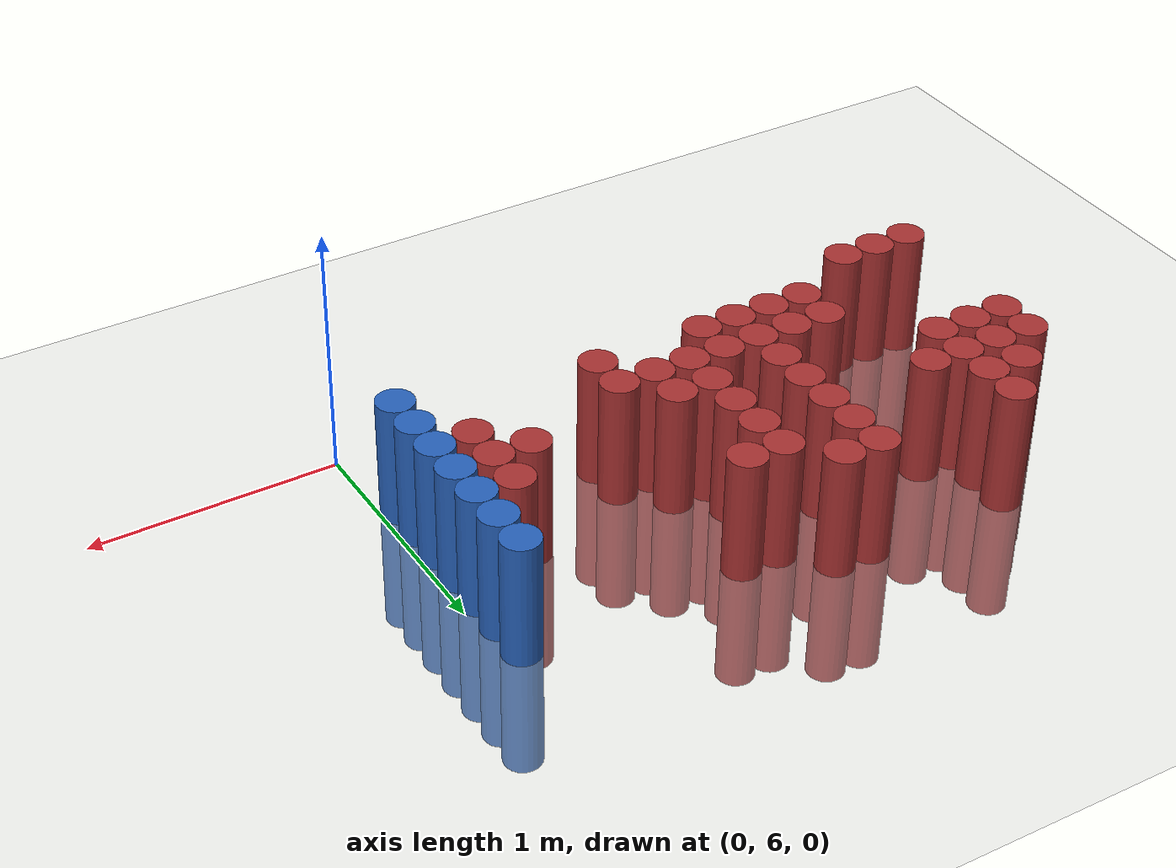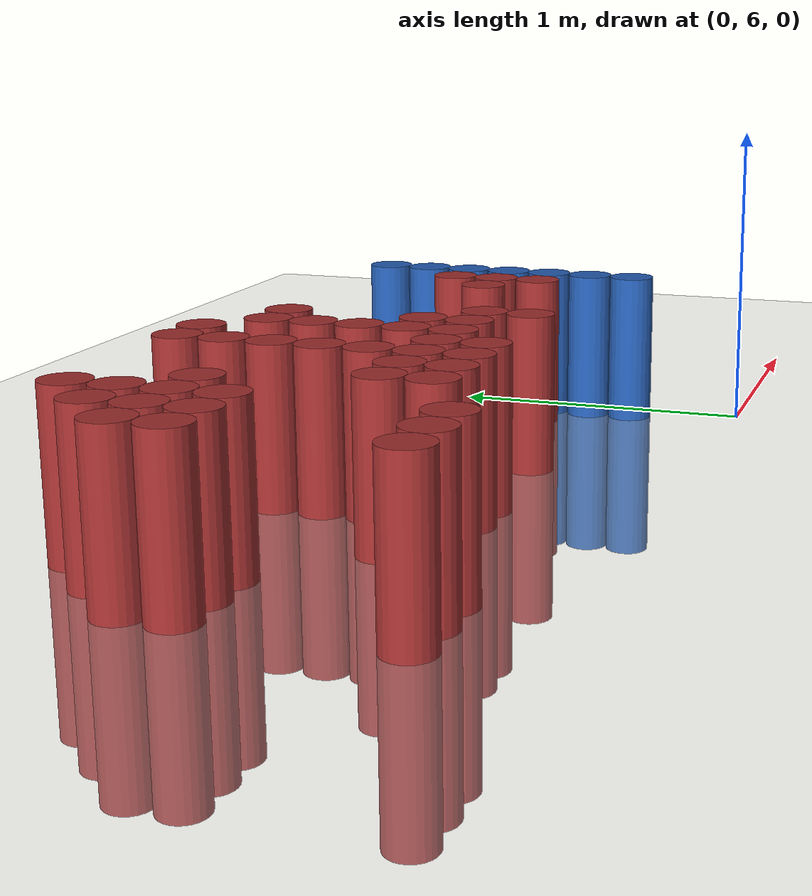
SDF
<sdf version="1.6">
 <world name="default">
  <model name="ground_plane">
   <static>1</static>
   <link name="link">
    <collision name="collision">
     <geometry><plane><normal>0 0 1</normal><size>100 100</size></plane></geometry>
     <surface><friction><ode><mu>100</mu><mu2>50</mu2></ode></friction></surface>
    </collision>
    <visual name="visual">
     <cast_shadows>0</cast_shadows>
     <geometry><plane><normal>0 0 1</normal><size>100 100</size></plane></geometry>
     <material>
      <script><uri>file://media/materials/scripts/gazebo.material</uri><name>Gazebo/Grey</name></script>
     </material>
    </visual>
   </link>
  </model>
  <model name="unit_cylinder_169">
   <static>1</static>
   <pose>-2.325000 6.375000 0.000000 0.000000 0.000000 0.000000</pose>
   <link name="link">
    <inertial>
     <mass>1</mass>
     <inertia><ixx>0.145833</ixx><ixy>0</ixy><ixz>0</ixz><iyy>0.145833</iyy><iyz>0</iyz><izz>0.125</izz></inertia>
    </inertial>
    <collision name="collision">
     <geometry><cylinder><radius>0.075000</radius><length>1</length></cylinder></geometry>
    </collision>
    <visual name="visual">
     <geometry><cylinder><radius>0.075000</radius><length>1</length></cylinder></geometry>
     <material>
      <ambient>0.648000 0.192000 0.192000 1</ambient>
      <diffuse>0.648000 0.192000 0.192000 1</diffuse>
     </material>
     <material>
      <script><name>Gazebo/Grey</name><uri>file://media/materials/scripts/gazebo.material</uri></script>
     </material>
    </visual>
   </link>
  </model>
  <model name="unit_cylinder_170">
   <static>1</static>
   <pose>-2.325000 6.975000 0.000000 0.000000 0.000000 0.000000</pose>
   <link name="link">
    <inertial>
     <mass>1</mass>
     <inertia><ixx>0.145833</ixx><ixy>0</ixy><ixz>0</ixz><iyy>0.145833</iyy><iyz>0</iyz><izz>0.125</izz></inertia>
    </inertial>
    <collision name="collision">
     <geometry><cylinder><radius>0.075000</radius><length>1</length></cylinder></geometry>
    </collision>
    <visual name="visual">
     <geometry><cylinder><radius>0.075000</radius><length>1</length></cylinder></geometry>
     <material>
      <ambient>0.648000 0.192000 0.192000 1</ambient>
      <diffuse>0.648000 0.192000 0.192000 1</diffuse>
     </material>
     <material>
      <script><name>Gazebo/Grey</name><uri>file://media/materials/scripts/gazebo.material</uri></script>
     </material>
    </visual>
   </link>
  </model>
  <model name="unit_cylinder_171">
   <static>1</static>
   <pose>-2.325000 7.125000 0.000000 0.000000 0.000000 0.000000</pose>
   <link name="link">
    <inertial>
     <mass>1</mass>
     <inertia><ixx>0.145833</ixx><ixy>0</ixy><ixz>0</ixz><iyy>0.145833</iyy><iyz>0</iyz><izz>0.125</izz></inertia>
    </inertial>
    <collision name="collision">
     <geometry><cylinder><radius>0.075000</radius><length>1</length></cylinder></geometry>
    </collision>
    <visual name="visual">
     <geometry><cylinder><radius>0.075000</radius><length>1</length></cylinder></geometry>
     <material>
      <ambient>0.648000 0.192000 0.192000 1</ambient>
      <diffuse>0.648000 0.192000 0.192000 1</diffuse>
     </material>
     <material>
      <script><name>Gazebo/Grey</name><uri>file://media/materials/scripts/gazebo.material</uri></script>
     </material>
    </visual>
   </link>
  </model>
  <model name="unit_cylinder_174">
   <static>1</static>
   <pose>-2.175000 6.375000 0.000000 0.000000 0.000000 0.000000</pose>
   <link name="link">
    <inertial>
     <mass>1</mass>
     <inertia><ixx>0.145833</ixx><ixy>0</ixy><ixz>0</ixz><iyy>0.145833</iyy><iyz>0</iyz><izz>0.125</izz></inertia>
    </inertial>
    <collision name="collision">
     <geometry><cylinder><radius>0.075000</radius><length>1</length></cylinder></geometry>
    </collision>
    <visual name="visual">
     <geometry><cylinder><radius>0.075000</radius><length>1</length></cylinder></geometry>
     <material>
      <ambient>0.648000 0.192000 0.192000 1</ambient>
      <diffuse>0.648000 0.192000 0.192000 1</diffuse>
     </material>
     <material>
      <script><name>Gazebo/Grey</name><uri>file://media/materials/scripts/gazebo.material</uri></script>
     </material>
    </visual>
   </link>
  </model>
  <model name="unit_cylinder_175">
   <static>1</static>
   <pose>-2.175000 6.975000 0.000000 0.000000 0.000000 0.000000</pose>
   <link name="link">
    <inertial>
     <mass>1</mass>
     <inertia><ixx>0.145833</ixx><ixy>0</ixy><ixz>0</ixz><iyy>0.145833</iyy><iyz>0</iyz><izz>0.125</izz></inertia>
    </inertial>
    <collision name="collision">
     <geometry><cylinder><radius>0.075000</radius><length>1</length></cylinder></geometry>
    </collision>
    <visual name="visual">
     <geometry><cylinder><radius>0.075000</radius><length>1</length></cylinder></geometry>
     <material>
      <ambient>0.648000 0.192000 0.192000 1</ambient>
      <diffuse>0.648000 0.192000 0.192000 1</diffuse>
     </material>
     <material>
      <script><name>Gazebo/Grey</name><uri>file://media/materials/scripts/gazebo.material</uri></script>
     </material>
    </visual>
   </link>
  </model>
  <model name="unit_cylinder_176">
   <static>1</static>
   <pose>-2.175000 7.125000 0.000000 0.000000 0.000000 0.000000</pose>
   <link name="link">
    <inertial>
     <mass>1</mass>
     <inertia><ixx>0.145833</ixx><ixy>0</ixy><ixz>0</ixz><iyy>0.145833</iyy><iyz>0</iyz><izz>0.125</izz></inertia>
    </inertial>
    <collision name="collision">
     <geometry><cylinder><radius>0.075000</radius><length>1</length></cylinder></geometry>
    </collision>
    <visual name="visual">
     <geometry><cylinder><radius>0.075000</radius><length>1</length></cylinder></geometry>
     <material>
      <ambient>0.648000 0.192000 0.192000 1</ambient>
      <diffuse>0.648000 0.192000 0.192000 1</diffuse>
     </material>
     <material>
      <script><name>Gazebo/Grey</name><uri>file://media/materials/scripts/gazebo.material</uri></script>
     </material>
    </visual>
   </link>
  </model>
  <model name="unit_cylinder_177">
   <static>1</static>
   <pose>-2.175000 7.275000 0.000000 0.000000 0.000000 0.000000</pose>
   <link name="link">
    <inertial>
     <mass>1</mass>
     <inertia><ixx>0.145833</ixx><ixy>0</ixy><ixz>0</ixz><iyy>0.145833</iyy><iyz>0</iyz><izz>0.125</izz></inertia>
    </inertial>
    <collision name="collision">
     <geometry><cylinder><radius>0.075000</radius><length>1</length></cylinder></geometry>
    </collision>
    <visual name="visual">
     <geometry><cylinder><radius>0.075000</radius><length>1</length></cylinder></geometry>
     <material>
      <ambient>0.648000 0.192000 0.192000 1</ambient>
      <diffuse>0.648000 0.192000 0.192000 1</diffuse>
     </material>
     <material>
      <script><name>Gazebo/Grey</name><uri>file://media/materials/scripts/gazebo.material</uri></script>
     </material>
    </visual>
   </link>
  </model>
  <model name="unit_cylinder_178">
   <static>1</static>
   <pose>-2.025000 6.375000 0.000000 0.000000 0.000000 0.000000</pose>
   <link name="link">
    <inertial>
     <mass>1</mass>
     <inertia><ixx>0.145833</ixx><ixy>0</ixy><ixz>0</ixz><iyy>0.145833</iyy><iyz>0</iyz><izz>0.125</izz></inertia>
    </inertial>
    <collision name="collision">
     <geometry><cylinder><radius>0.075000</radius><length>1</length></cylinder></geometry>
    </collision>
    <visual name="visual">
     <geometry><cylinder><radius>0.075000</radius><length>1</length></cylinder></geometry>
     <material>
      <ambient>0.648000 0.192000 0.192000 1</ambient>
      <diffuse>0.648000 0.192000 0.192000 1</diffuse>
     </material>
     <material>
      <script><name>Gazebo/Grey</name><uri>file://media/materials/scripts/gazebo.material</uri></script>
     </material>
    </visual>
   </link>
  </model>
  <model name="unit_cylinder_179">
   <static>1</static>
   <pose>-2.025000 6.975000 0.000000 0.000000 0.000000 0.000000</pose>
   <link name="link">
    <inertial>
     <mass>1</mass>
     <inertia><ixx>0.145833</ixx><ixy>0</ixy><ixz>0</ixz><iyy>0.145833</iyy><iyz>0</iyz><izz>0.125</izz></inertia>
    </inertial>
    <collision name="collision">
     <geometry><cylinder><radius>0.075000</radius><length>1</length></cylinder></geometry>
    </collision>
    <visual name="visual">
     <geometry><cylinder><radius>0.075000</radius><length>1</length></cylinder></geometry>
     <material>
      <ambient>0.648000 0.192000 0.192000 1</ambient>
      <diffuse>0.648000 0.192000 0.192000 1</diffuse>
     </material>
     <material>
      <script><name>Gazebo/Grey</name><uri>file://media/materials/scripts/gazebo.material</uri></script>
     </material>
    </visual>
   </link>
  </model>
  <model name="unit_cylinder_180">
   <static>1</static>
   <pose>-2.025000 7.125000 0.000000 0.000000 0.000000 0.000000</pose>
   <link name="link">
    <inertial>
     <mass>1</mass>
     <inertia><ixx>0.145833</ixx><ixy>0</ixy><ixz>0</ixz><iyy>0.145833</iyy><iyz>0</iyz><izz>0.125</izz></inertia>
    </inertial>
    <collision name="collision">
     <geometry><cylinder><radius>0.075000</radius><length>1</length></cylinder></geometry>
    </collision>
    <visual name="visual">
     <geometry><cylinder><radius>0.075000</radius><length>1</length></cylinder></geometry>
     <material>
      <ambient>0.648000 0.192000 0.192000 1</ambient>
      <diffuse>0.648000 0.192000 0.192000 1</diffuse>
     </material>
     <material>
      <script><name>Gazebo/Grey</name><uri>file://media/materials/scripts/gazebo.material</uri></script>
     </material>
    </visual>
   </link>
  </model>
  <model name="unit_cylinder_181">
   <static>1</static>
   <pose>-2.025000 7.275000 0.000000 0.000000 0.000000 0.000000</pose>
   <link name="link">
    <inertial>
     <mass>1</mass>
     <inertia><ixx>0.145833</ixx><ixy>0</ixy><ixz>0</ixz><iyy>0.145833</iyy><iyz>0</iyz><izz>0.125</izz></inertia>
    </inertial>
    <collision name="collision">
     <geometry><cylinder><radius>0.075000</radius><length>1</length></cylinder></geometry>
    </collision>
    <visual name="visual">
     <geometry><cylinder><radius>0.075000</radius><length>1</length></cylinder></geometry>
     <material>
      <ambient>0.648000 0.192000 0.192000 1</ambient>
      <diffuse>0.648000 0.192000 0.192000 1</diffuse>
     </material>
     <material>
      <script><name>Gazebo/Grey</name><uri>file://media/materials/scripts/gazebo.material</uri></script>
     </material>
    </visual>
   </link>
  </model>
  <model name="unit_cylinder_182">
   <static>1</static>
   <pose>-2.025000 7.425000 0.000000 0.000000 0.000000 0.000000</pose>
   <link name="link">
    <inertial>
     <mass>1</mass>
     <inertia><ixx>0.145833</ixx><ixy>0</ixy><ixz>0</ixz><iyy>0.145833</iyy><iyz>0</iyz><izz>0.125</izz></inertia>
    </inertial>
    <collision name="collision">
     <geometry><cylinder><radius>0.075000</radius><length>1</length></cylinder></geometry>
    </collision>
    <visual name="visual">
     <geometry><cylinder><radius>0.075000</radius><length>1</length></cylinder></geometry>
     <material>
      <ambient>0.648000 0.192000 0.192000 1</ambient>
      <diffuse>0.648000 0.192000 0.192000 1</diffuse>
     </material>
     <material>
      <script><name>Gazebo/Grey</name><uri>file://media/materials/scripts/gazebo.material</uri></script>
     </material>
    </visual>
   </link>
  </model>
  <model name="unit_cylinder_184">
   <static>1</static>
   <pose>-1.875000 7.125000 0.000000 0.000000 0.000000 0.000000</pose>
   <link name="link">
    <inertial>
     <mass>1</mass>
     <inertia><ixx>0.145833</ixx><ixy>0</ixy><ixz>0</ixz><iyy>0.145833</iyy><iyz>0</iyz><izz>0.125</izz></inertia>
    </inertial>
    <collision name="collision">
     <geometry><cylinder><radius>0.075000</radius><length>1</length></cylinder></geometry>
    </collision>
    <visual name="visual">
     <geometry><cylinder><radius>0.075000</radius><length>1</length></cylinder></geometry>
     <material>
      <ambient>0.648000 0.192000 0.192000 1</ambient>
      <diffuse>0.648000 0.192000 0.192000 1</diffuse>
     </material>
     <material>
      <script><name>Gazebo/Grey</name><uri>file://media/materials/scripts/gazebo.material</uri></script>
     </material>
    </visual>
   </link>
  </model>
  <model name="unit_cylinder_188">
   <static>1</static>
   <pose>-1.725000 6.525000 0.000000 0.000000 0.000000 0.000000</pose>
   <link name="link">
    <inertial>
     <mass>1</mass>
     <inertia><ixx>0.145833</ixx><ixy>0</ixy><ixz>0</ixz><iyy>0.145833</iyy><iyz>0</iyz><izz>0.125</izz></inertia>
    </inertial>
    <collision name="collision">
     <geometry><cylinder><radius>0.075000</radius><length>1</length></cylinder></geometry>
    </collision>
    <visual name="visual">
     <geometry><cylinder><radius>0.075000</radius><length>1</length></cylinder></geometry>
     <material>
      <ambient>0.648000 0.192000 0.192000 1</ambient>
      <diffuse>0.648000 0.192000 0.192000 1</diffuse>
     </material>
     <material>
      <script><name>Gazebo/Grey</name><uri>file://media/materials/scripts/gazebo.material</uri></script>
     </material>
    </visual>
   </link>
  </model>
  <model name="unit_cylinder_189">
   <static>1</static>
   <pose>-1.725000 6.675000 0.000000 0.000000 0.000000 0.000000</pose>
   <link name="link">
    <inertial>
     <mass>1</mass>
     <inertia><ixx>0.145833</ixx><ixy>0</ixy><ixz>0</ixz><iyy>0.145833</iyy><iyz>0</iyz><izz>0.125</izz></inertia>
    </inertial>
    <collision name="collision">
     <geometry><cylinder><radius>0.075000</radius><length>1</length></cylinder></geometry>
    </collision>
    <visual name="visual">
     <geometry><cylinder><radius>0.075000</radius><length>1</length></cylinder></geometry>
     <material>
      <ambient>0.648000 0.192000 0.192000 1</ambient>
      <diffuse>0.648000 0.192000 0.192000 1</diffuse>
     </material>
     <material>
      <script><name>Gazebo/Grey</name><uri>file://media/materials/scripts/gazebo.material</uri></script>
     </material>
    </visual>
   </link>
  </model>
  <model name="unit_cylinder_193">
   <static>1</static>
   <pose>-1.575000 6.525000 0.000000 0.000000 0.000000 0.000000</pose>
   <link name="link">
    <inertial>
     <mass>1</mass>
     <inertia><ixx>0.145833</ixx><ixy>0</ixy><ixz>0</ixz><iyy>0.145833</iyy><iyz>0</iyz><izz>0.125</izz></inertia>
    </inertial>
    <collision name="collision">
     <geometry><cylinder><radius>0.075000</radius><length>1</length></cylinder></geometry>
    </collision>
    <visual name="visual">
     <geometry><cylinder><radius>0.075000</radius><length>1</length></cylinder></geometry>
     <material>
      <ambient>0.648000 0.192000 0.192000 1</ambient>
      <diffuse>0.648000 0.192000 0.192000 1</diffuse>
     </material>
     <material>
      <script><name>Gazebo/Grey</name><uri>file://media/materials/scripts/gazebo.material</uri></script>
     </material>
    </visual>
   </link>
  </model>
  <model name="unit_cylinder_194">
   <static>1</static>
   <pose>-1.575000 6.675000 0.000000 0.000000 0.000000 0.000000</pose>
   <link name="link">
    <inertial>
     <mass>1</mass>
     <inertia><ixx>0.145833</ixx><ixy>0</ixy><ixz>0</ixz><iyy>0.145833</iyy><iyz>0</iyz><izz>0.125</izz></inertia>
    </inertial>
    <collision name="collision">
     <geometry><cylinder><radius>0.075000</radius><length>1</length></cylinder></geometry>
    </collision>
    <visual name="visual">
     <geometry><cylinder><radius>0.075000</radius><length>1</length></cylinder></geometry>
     <material>
      <ambient>0.648000 0.192000 0.192000 1</ambient>
      <diffuse>0.648000 0.192000 0.192000 1</diffuse>
     </material>
     <material>
      <script><name>Gazebo/Grey</name><uri>file://media/materials/scripts/gazebo.material</uri></script>
     </material>
    </visual>
   </link>
  </model>
  <model name="unit_cylinder_200">
   <static>1</static>
   <pose>-1.425000 6.525000 0.000000 0.000000 0.000000 0.000000</pose>
   <link name="link">
    <inertial>
     <mass>1</mass>
     <inertia><ixx>0.145833</ixx><ixy>0</ixy><ixz>0</ixz><iyy>0.145833</iyy><iyz>0</iyz><izz>0.125</izz></inertia>
    </inertial>
    <collision name="collision">
     <geometry><cylinder><radius>0.075000</radius><length>1</length></cylinder></geometry>
    </collision>
    <visual name="visual">
     <geometry><cylinder><radius>0.075000</radius><length>1</length></cylinder></geometry>
     <material>
      <ambient>0.648000 0.192000 0.192000 1</ambient>
      <diffuse>0.648000 0.192000 0.192000 1</diffuse>
     </material>
     <material>
      <script><name>Gazebo/Grey</name><uri>file://media/materials/scripts/gazebo.material</uri></script>
     </material>
    </visual>
   </link>
  </model>
  <model name="unit_cylinder_201">
   <static>1</static>
   <pose>-1.425000 6.675000 0.000000 0.000000 0.000000 0.000000</pose>
   <link name="link">
    <inertial>
     <mass>1</mass>
     <inertia><ixx>0.145833</ixx><ixy>0</ixy><ixz>0</ixz><iyy>0.145833</iyy><iyz>0</iyz><izz>0.125</izz></inertia>
    </inertial>
    <collision name="collision">
     <geometry><cylinder><radius>0.075000</radius><length>1</length></cylinder></geometry>
    </collision>
    <visual name="visual">
     <geometry><cylinder><radius>0.075000</radius><length>1</length></cylinder></geometry>
     <material>
      <ambient>0.648000 0.192000 0.192000 1</ambient>
      <diffuse>0.648000 0.192000 0.192000 1</diffuse>
     </material>
     <material>
      <script><name>Gazebo/Grey</name><uri>file://media/materials/scripts/gazebo.material</uri></script>
     </material>
    </visual>
   </link>
  </model>
  <model name="unit_cylinder_202">
   <static>1</static>
   <pose>-1.425000 6.825000 0.000000 0.000000 0.000000 0.000000</pose>
   <link name="link">
    <inertial>
     <mass>1</mass>
     <inertia><ixx>0.145833</ixx><ixy>0</ixy><ixz>0</ixz><iyy>0.145833</iyy><iyz>0</iyz><izz>0.125</izz></inertia>
    </inertial>
    <collision name="collision">
     <geometry><cylinder><radius>0.075000</radius><length>1</length></cylinder></geometry>
    </collision>
    <visual name="visual">
     <geometry><cylinder><radius>0.075000</radius><length>1</length></cylinder></geometry>
     <material>
      <ambient>0.648000 0.192000 0.192000 1</ambient>
      <diffuse>0.648000 0.192000 0.192000 1</diffuse>
     </material>
     <material>
      <script><name>Gazebo/Grey</name><uri>file://media/materials/scripts/gazebo.material</uri></script>
     </material>
    </visual>
   </link>
  </model>
  <model name="unit_cylinder_203">
   <static>1</static>
   <pose>-1.425000 6.975000 0.000000 0.000000 0.000000 0.000000</pose>
   <link name="link">
    <inertial>
     <mass>1</mass>
     <inertia><ixx>0.145833</ixx><ixy>0</ixy><ixz>0</ixz><iyy>0.145833</iyy><iyz>0</iyz><izz>0.125</izz></inertia>
    </inertial>
    <collision name="collision">
     <geometry><cylinder><radius>0.075000</radius><length>1</length></cylinder></geometry>
    </collision>
    <visual name="visual">
     <geometry><cylinder><radius>0.075000</radius><length>1</length></cylinder></geometry>
     <material>
      <ambient>0.648000 0.192000 0.192000 1</ambient>
      <diffuse>0.648000 0.192000 0.192000 1</diffuse>
     </material>
     <material>
      <script><name>Gazebo/Grey</name><uri>file://media/materials/scripts/gazebo.material</uri></script>
     </material>
    </visual>
   </link>
  </model>
  <model name="unit_cylinder_204">
   <static>1</static>
   <pose>-1.425000 7.125000 0.000000 0.000000 0.000000 0.000000</pose>
   <link name="link">
    <inertial>
     <mass>1</mass>
     <inertia><ixx>0.145833</ixx><ixy>0</ixy><ixz>0</ixz><iyy>0.145833</iyy><iyz>0</iyz><izz>0.125</izz></inertia>
    </inertial>
    <collision name="collision">
     <geometry><cylinder><radius>0.075000</radius><length>1</length></cylinder></geometry>
    </collision>
    <visual name="visual">
     <geometry><cylinder><radius>0.075000</radius><length>1</length></cylinder></geometry>
     <material>
      <ambient>0.648000 0.192000 0.192000 1</ambient>
      <diffuse>0.648000 0.192000 0.192000 1</diffuse>
     </material>
     <material>
      <script><name>Gazebo/Grey</name><uri>file://media/materials/scripts/gazebo.material</uri></script>
     </material>
    </visual>
   </link>
  </model>
  <model name="unit_cylinder_205">
   <static>1</static>
   <pose>-1.425000 7.275000 0.000000 0.000000 0.000000 0.000000</pose>
   <link name="link">
    <inertial>
     <mass>1</mass>
     <inertia><ixx>0.145833</ixx><ixy>0</ixy><ixz>0</ixz><iyy>0.145833</iyy><iyz>0</iyz><izz>0.125</izz></inertia>
    </inertial>
    <collision name="collision">
     <geometry><cylinder><radius>0.075000</radius><length>1</length></cylinder></geometry>
    </collision>
    <visual name="visual">
     <geometry><cylinder><radius>0.075000</radius><length>1</length></cylinder></geometry>
     <material>
      <ambient>0.648000 0.192000 0.192000 1</ambient>
      <diffuse>0.648000 0.192000 0.192000 1</diffuse>
     </material>
     <material>
      <script><name>Gazebo/Grey</name><uri>file://media/materials/scripts/gazebo.material</uri></script>
     </material>
    </visual>
   </link>
  </model>
  <model name="unit_cylinder_206">
   <static>1</static>
   <pose>-1.425000 7.425000 0.000000 0.000000 0.000000 0.000000</pose>
   <link name="link">
    <inertial>
     <mass>1</mass>
     <inertia><ixx>0.145833</ixx><ixy>0</ixy><ixz>0</ixz><iyy>0.145833</iyy><iyz>0</iyz><izz>0.125</izz></inertia>
    </inertial>
    <collision name="collision">
     <geometry><cylinder><radius>0.075000</radius><length>1</length></cylinder></geometry>
    </collision>
    <visual name="visual">
     <geometry><cylinder><radius>0.075000</radius><length>1</length></cylinder></geometry>
     <material>
      <ambient>0.648000 0.192000 0.192000 1</ambient>
      <diffuse>0.648000 0.192000 0.192000 1</diffuse>
     </material>
     <material>
      <script><name>Gazebo/Grey</name><uri>file://media/materials/scripts/gazebo.material</uri></script>
     </material>
    </visual>
   </link>
  </model>
  <model name="unit_cylinder_213">
   <static>1</static>
   <pose>-1.275000 6.525000 0.000000 0.000000 0.000000 0.000000</pose>
   <link name="link">
    <inertial>
     <mass>1</mass>
     <inertia><ixx>0.145833</ixx><ixy>0</ixy><ixz>0</ixz><iyy>0.145833</iyy><iyz>0</iyz><izz>0.125</izz></inertia>
    </inertial>
    <collision name="collision">
     <geometry><cylinder><radius>0.075000</radius><length>1</length></cylinder></geometry>
    </collision>
    <visual name="visual">
     <geometry><cylinder><radius>0.075000</radius><length>1</length></cylinder></geometry>
     <material>
      <ambient>0.648000 0.192000 0.192000 1</ambient>
      <diffuse>0.648000 0.192000 0.192000 1</diffuse>
     </material>
     <material>
      <script><name>Gazebo/Grey</name><uri>file://media/materials/scripts/gazebo.material</uri></script>
     </material>
    </visual>
   </link>
  </model>
  <model name="unit_cylinder_214">
   <static>1</static>
   <pose>-1.275000 6.675000 0.000000 0.000000 0.000000 0.000000</pose>
   <link name="link">
    <inertial>
     <mass>1</mass>
     <inertia><ixx>0.145833</ixx><ixy>0</ixy><ixz>0</ixz><iyy>0.145833</iyy><iyz>0</iyz><izz>0.125</izz></inertia>
    </inertial>
    <collision name="collision">
     <geometry><cylinder><radius>0.075000</radius><length>1</length></cylinder></geometry>
    </collision>
    <visual name="visual">
     <geometry><cylinder><radius>0.075000</radius><length>1</length></cylinder></geometry>
     <material>
      <ambient>0.648000 0.192000 0.192000 1</ambient>
      <diffuse>0.648000 0.192000 0.192000 1</diffuse>
     </material>
     <material>
      <script><name>Gazebo/Grey</name><uri>file://media/materials/scripts/gazebo.material</uri></script>
     </material>
    </visual>
   </link>
  </model>
  <model name="unit_cylinder_215">
   <static>1</static>
   <pose>-1.275000 7.425000 0.000000 0.000000 0.000000 0.000000</pose>
   <link name="link">
    <inertial>
     <mass>1</mass>
     <inertia><ixx>0.145833</ixx><ixy>0</ixy><ixz>0</ixz><iyy>0.145833</iyy><iyz>0</iyz><izz>0.125</izz></inertia>
    </inertial>
    <collision name="collision">
     <geometry><cylinder><radius>0.075000</radius><length>1</length></cylinder></geometry>
    </collision>
    <visual name="visual">
     <geometry><cylinder><radius>0.075000</radius><length>1</length></cylinder></geometry>
     <material>
      <ambient>0.648000 0.192000 0.192000 1</ambient>
      <diffuse>0.648000 0.192000 0.192000 1</diffuse>
     </material>
     <material>
      <script><name>Gazebo/Grey</name><uri>file://media/materials/scripts/gazebo.material</uri></script>
     </material>
    </visual>
   </link>
  </model>
  <model name="unit_cylinder_220">
   <static>1</static>
   <pose>-1.125000 6.675000 0.000000 0.000000 0.000000 0.000000</pose>
   <link name="link">
    <inertial>
     <mass>1</mass>
     <inertia><ixx>0.145833</ixx><ixy>0</ixy><ixz>0</ixz><iyy>0.145833</iyy><iyz>0</iyz><izz>0.125</izz></inertia>
    </inertial>
    <collision name="collision">
     <geometry><cylinder><radius>0.075000</radius><length>1</length></cylinder></geometry>
    </collision>
    <visual name="visual">
     <geometry><cylinder><radius>0.075000</radius><length>1</length></cylinder></geometry>
     <material>
      <ambient>0.648000 0.192000 0.192000 1</ambient>
      <diffuse>0.648000 0.192000 0.192000 1</diffuse>
     </material>
     <material>
      <script><name>Gazebo/Grey</name><uri>file://media/materials/scripts/gazebo.material</uri></script>
     </material>
    </visual>
   </link>
  </model>
  <model name="unit_cylinder_221">
   <static>1</static>
   <pose>-1.125000 6.825000 0.000000 0.000000 0.000000 0.000000</pose>
   <link name="link">
    <inertial>
     <mass>1</mass>
     <inertia><ixx>0.145833</ixx><ixy>0</ixy><ixz>0</ixz><iyy>0.145833</iyy><iyz>0</iyz><izz>0.125</izz></inertia>
    </inertial>
    <collision name="collision">
     <geometry><cylinder><radius>0.075000</radius><length>1</length></cylinder></geometry>
    </collision>
    <visual name="visual">
     <geometry><cylinder><radius>0.075000</radius><length>1</length></cylinder></geometry>
     <material>
      <ambient>0.648000 0.192000 0.192000 1</ambient>
      <diffuse>0.648000 0.192000 0.192000 1</diffuse>
     </material>
     <material>
      <script><name>Gazebo/Grey</name><uri>file://media/materials/scripts/gazebo.material</uri></script>
     </material>
    </visual>
   </link>
  </model>
  <model name="unit_cylinder_222">
   <static>1</static>
   <pose>-1.125000 6.975000 0.000000 0.000000 0.000000 0.000000</pose>
   <link name="link">
    <inertial>
     <mass>1</mass>
     <inertia><ixx>0.145833</ixx><ixy>0</ixy><ixz>0</ixz><iyy>0.145833</iyy><iyz>0</iyz><izz>0.125</izz></inertia>
    </inertial>
    <collision name="collision">
     <geometry><cylinder><radius>0.075000</radius><length>1</length></cylinder></geometry>
    </collision>
    <visual name="visual">
     <geometry><cylinder><radius>0.075000</radius><length>1</length></cylinder></geometry>
     <material>
      <ambient>0.648000 0.192000 0.192000 1</ambient>
      <diffuse>0.648000 0.192000 0.192000 1</diffuse>
     </material>
     <material>
      <script><name>Gazebo/Grey</name><uri>file://media/materials/scripts/gazebo.material</uri></script>
     </material>
    </visual>
   </link>
  </model>
  <model name="unit_cylinder_223">
   <static>1</static>
   <pose>-1.125000 7.125000 0.000000 0.000000 0.000000 0.000000</pose>
   <link name="link">
    <inertial>
     <mass>1</mass>
     <inertia><ixx>0.145833</ixx><ixy>0</ixy><ixz>0</ixz><iyy>0.145833</iyy><iyz>0</iyz><izz>0.125</izz></inertia>
    </inertial>
    <collision name="collision">
     <geometry><cylinder><radius>0.075000</radius><length>1</length></cylinder></geometry>
    </collision>
    <visual name="visual">
     <geometry><cylinder><radius>0.075000</radius><length>1</length></cylinder></geometry>
     <material>
      <ambient>0.648000 0.192000 0.192000 1</ambient>
      <diffuse>0.648000 0.192000 0.192000 1</diffuse>
     </material>
     <material>
      <script><name>Gazebo/Grey</name><uri>file://media/materials/scripts/gazebo.material</uri></script>
     </material>
    </visual>
   </link>
  </model>
  <model name="unit_cylinder_224">
   <static>1</static>
   <pose>-1.125000 7.275000 0.000000 0.000000 0.000000 0.000000</pose>
   <link name="link">
    <inertial>
     <mass>1</mass>
     <inertia><ixx>0.145833</ixx><ixy>0</ixy><ixz>0</ixz><iyy>0.145833</iyy><iyz>0</iyz><izz>0.125</izz></inertia>
    </inertial>
    <collision name="collision">
     <geometry><cylinder><radius>0.075000</radius><length>1</length></cylinder></geometry>
    </collision>
    <visual name="visual">
     <geometry><cylinder><radius>0.075000</radius><length>1</length></cylinder></geometry>
     <material>
      <ambient>0.648000 0.192000 0.192000 1</ambient>
      <diffuse>0.648000 0.192000 0.192000 1</diffuse>
     </material>
     <material>
      <script><name>Gazebo/Grey</name><uri>file://media/materials/scripts/gazebo.material</uri></script>
     </material>
    </visual>
   </link>
  </model>
  <model name="unit_cylinder_229">
   <static>1</static>
   <pose>-0.975000 6.675000 0.000000 0.000000 0.000000 0.000000</pose>
   <link name="link">
    <inertial>
     <mass>1</mass>
     <inertia><ixx>0.145833</ixx><ixy>0</ixy><ixz>0</ixz><iyy>0.145833</iyy><iyz>0</iyz><izz>0.125</izz></inertia>
    </inertial>
    <collision name="collision">
     <geometry><cylinder><radius>0.075000</radius><length>1</length></cylinder></geometry>
    </collision>
    <visual name="visual">
     <geometry><cylinder><radius>0.075000</radius><length>1</length></cylinder></geometry>
     <material>
      <ambient>0.648000 0.192000 0.192000 1</ambient>
      <diffuse>0.648000 0.192000 0.192000 1</diffuse>
     </material>
     <material>
      <script><name>Gazebo/Grey</name><uri>file://media/materials/scripts/gazebo.material</uri></script>
     </material>
    </visual>
   </link>
  </model>
  <model name="unit_cylinder_230">
   <static>1</static>
   <pose>-0.975000 6.825000 0.000000 0.000000 0.000000 0.000000</pose>
   <link name="link">
    <inertial>
     <mass>1</mass>
     <inertia><ixx>0.145833</ixx><ixy>0</ixy><ixz>0</ixz><iyy>0.145833</iyy><iyz>0</iyz><izz>0.125</izz></inertia>
    </inertial>
    <collision name="collision">
     <geometry><cylinder><radius>0.075000</radius><length>1</length></cylinder></geometry>
    </collision>
    <visual name="visual">
     <geometry><cylinder><radius>0.075000</radius><length>1</length></cylinder></geometry>
     <material>
      <ambient>0.648000 0.192000 0.192000 1</ambient>
      <diffuse>0.648000 0.192000 0.192000 1</diffuse>
     </material>
     <material>
      <script><name>Gazebo/Grey</name><uri>file://media/materials/scripts/gazebo.material</uri></script>
     </material>
    </visual>
   </link>
  </model>
  <model name="unit_cylinder_231">
   <static>1</static>
   <pose>-0.975000 7.275000 0.000000 0.000000 0.000000 0.000000</pose>
   <link name="link">
    <inertial>
     <mass>1</mass>
     <inertia><ixx>0.145833</ixx><ixy>0</ixy><ixz>0</ixz><iyy>0.145833</iyy><iyz>0</iyz><izz>0.125</izz></inertia>
    </inertial>
    <collision name="collision">
     <geometry><cylinder><radius>0.075000</radius><length>1</length></cylinder></geometry>
    </collision>
    <visual name="visual">
     <geometry><cylinder><radius>0.075000</radius><length>1</length></cylinder></geometry>
     <material>
      <ambient>0.648000 0.192000 0.192000 1</ambient>
      <diffuse>0.648000 0.192000 0.192000 1</diffuse>
     </material>
     <material>
      <script><name>Gazebo/Grey</name><uri>file://media/materials/scripts/gazebo.material</uri></script>
     </material>
    </visual>
   </link>
  </model>
  <model name="unit_cylinder_237">
   <static>1</static>
   <pose>-0.825000 6.525000 0.000000 0.000000 0.000000 0.000000</pose>
   <link name="link">
    <inertial>
     <mass>1</mass>
     <inertia><ixx>0.145833</ixx><ixy>0</ixy><ixz>0</ixz><iyy>0.145833</iyy><iyz>0</iyz><izz>0.125</izz></inertia>
    </inertial>
    <collision name="collision">
     <geometry><cylinder><radius>0.075000</radius><length>1</length></cylinder></geometry>
    </collision>
    <visual name="visual">
     <geometry><cylinder><radius>0.075000</radius><length>1</length></cylinder></geometry>
     <material>
      <ambient>0.648000 0.192000 0.192000 1</ambient>
      <diffuse>0.648000 0.192000 0.192000 1</diffuse>
     </material>
     <material>
      <script><name>Gazebo/Grey</name><uri>file://media/materials/scripts/gazebo.material</uri></script>
     </material>
    </visual>
   </link>
  </model>
  <model name="unit_cylinder_238">
   <static>1</static>
   <pose>-0.825000 6.675000 0.000000 0.000000 0.000000 0.000000</pose>
   <link name="link">
    <inertial>
     <mass>1</mass>
     <inertia><ixx>0.145833</ixx><ixy>0</ixy><ixz>0</ixz><iyy>0.145833</iyy><iyz>0</iyz><izz>0.125</izz></inertia>
    </inertial>
    <collision name="collision">
     <geometry><cylinder><radius>0.075000</radius><length>1</length></cylinder></geometry>
    </collision>
    <visual name="visual">
     <geometry><cylinder><radius>0.075000</radius><length>1</length></cylinder></geometry>
     <material>
      <ambient>0.648000 0.192000 0.192000 1</ambient>
      <diffuse>0.648000 0.192000 0.192000 1</diffuse>
     </material>
     <material>
      <script><name>Gazebo/Grey</name><uri>file://media/materials/scripts/gazebo.material</uri></script>
     </material>
    </visual>
   </link>
  </model>
  <model name="unit_cylinder_253">
   <static>1</static>
   <pose>-0.375000 6.825000 0.000000 0.000000 0.000000 0.000000</pose>
   <link name="link">
    <inertial>
     <mass>1</mass>
     <inertia><ixx>0.145833</ixx><ixy>0</ixy><ixz>0</ixz><iyy>0.145833</iyy><iyz>0</iyz><izz>0.125</izz></inertia>
    </inertial>
    <collision name="collision">
     <geometry><cylinder><radius>0.075000</radius><length>1</length></cylinder></geometry>
    </collision>
    <visual name="visual">
     <geometry><cylinder><radius>0.075000</radius><length>1</length></cylinder></geometry>
     <material>
      <ambient>0.648000 0.192000 0.192000 1</ambient>
      <diffuse>0.648000 0.192000 0.192000 1</diffuse>
     </material>
     <material>
      <script><name>Gazebo/Grey</name><uri>file://media/materials/scripts/gazebo.material</uri></script>
     </material>
    </visual>
   </link>
  </model>
  <model name="unit_cylinder_255">
   <static>1</static>
   <pose>-0.225000 6.675000 0.000000 0.000000 0.000000 0.000000</pose>
   <link name="link">
    <inertial>
     <mass>1</mass>
     <inertia><ixx>0.145833</ixx><ixy>0</ixy><ixz>0</ixz><iyy>0.145833</iyy><iyz>0</iyz><izz>0.125</izz></inertia>
    </inertial>
    <collision name="collision">
     <geometry><cylinder><radius>0.075000</radius><length>1</length></cylinder></geometry>
    </collision>
    <visual name="visual">
     <geometry><cylinder><radius>0.075000</radius><length>1</length></cylinder></geometry>
     <material>
      <ambient>0.648000 0.192000 0.192000 1</ambient>
      <diffuse>0.648000 0.192000 0.192000 1</diffuse>
     </material>
     <material>
      <script><name>Gazebo/Grey</name><uri>file://media/materials/scripts/gazebo.material</uri></script>
     </material>
    </visual>
   </link>
  </model>
  <model name="unit_cylinder_256">
   <static>1</static>
   <pose>-0.225000 6.825000 0.000000 0.000000 0.000000 0.000000</pose>
   <link name="link">
    <inertial>
     <mass>1</mass>
     <inertia><ixx>0.145833</ixx><ixy>0</ixy><ixz>0</ixz><iyy>0.145833</iyy><iyz>0</iyz><izz>0.125</izz></inertia>
    </inertial>
    <collision name="collision">
     <geometry><cylinder><radius>0.075000</radius><length>1</length></cylinder></geometry>
    </collision>
    <visual name="visual">
     <geometry><cylinder><radius>0.075000</radius><length>1</length></cylinder></geometry>
     <material>
      <ambient>0.648000 0.192000 0.192000 1</ambient>
      <diffuse>0.648000 0.192000 0.192000 1</diffuse>
     </material>
     <material>
      <script><name>Gazebo/Grey</name><uri>file://media/materials/scripts/gazebo.material</uri></script>
     </material>
    </visual>
   </link>
  </model>
  <model name="unit_cylinder_257">
   <static>1</static>
   <pose>-0.225000 6.975000 0.000000 0.000000 0.000000 0.000000</pose>
   <link name="link">
    <inertial>
     <mass>1</mass>
     <inertia><ixx>0.145833</ixx><ixy>0</ixy><ixz>0</ixz><iyy>0.145833</iyy><iyz>0</iyz><izz>0.125</izz></inertia>
    </inertial>
    <collision name="collision">
     <geometry><cylinder><radius>0.075000</radius><length>1</length></cylinder></geometry>
    </collision>
    <visual name="visual">
     <geometry><cylinder><radius>0.075000</radius><length>1</length></cylinder></geometry>
     <material>
      <ambient>0.648000 0.192000 0.192000 1</ambient>
      <diffuse>0.648000 0.192000 0.192000 1</diffuse>
     </material>
     <material>
      <script><name>Gazebo/Grey</name><uri>file://media/materials/scripts/gazebo.material</uri></script>
     </material>
    </visual>
   </link>
  </model>
  <model name="unit_cylinder_267">
   <static>1</static>
   <pose>-0.075000 6.375000 0.000000 0.000000 0.000000 0.000000</pose>
   <link name="link">
    <inertial>
     <mass>1</mass>
     <inertia><ixx>0.145833</ixx><ixy>0</ixy><ixz>0</ixz><iyy>0.145833</iyy><iyz>0</iyz><izz>0.125</izz></inertia>
    </inertial>
    <collision name="collision">
     <geometry><cylinder><radius>0.075000</radius><length>1</length></cylinder></geometry>
    </collision>
    <visual name="visual">
     <geometry><cylinder><radius>0.075000</radius><length>1</length></cylinder></geometry>
     <material>
      <ambient>0.152000 0.379000 0.720000 1</ambient>
      <diffuse>0.152000 0.379000 0.720000 1</diffuse>
     </material>
     <material>
      <script><name>Gazebo/Grey</name><uri>file://media/materials/scripts/gazebo.material</uri></script>
     </material>
    </visual>
   </link>
  </model>
  <model name="unit_cylinder_268">
   <static>1</static>
   <pose>-0.075000 6.525000 0.000000 0.000000 0.000000 0.000000</pose>
   <link name="link">
    <inertial>
     <mass>1</mass>
     <inertia><ixx>0.145833</ixx><ixy>0</ixy><ixz>0</ixz><iyy>0.145833</iyy><iyz>0</iyz><izz>0.125</izz></inertia>
    </inertial>
    <collision name="collision">
     <geometry><cylinder><radius>0.075000</radius><length>1</length></cylinder></geometry>
    </collision>
    <visual name="visual">
     <geometry><cylinder><radius>0.075000</radius><length>1</length></cylinder></geometry>
     <material>
      <ambient>0.152000 0.379000 0.720000 1</ambient>
      <diffuse>0.152000 0.379000 0.720000 1</diffuse>
     </material>
     <material>
      <script><name>Gazebo/Grey</name><uri>file://media/materials/scripts/gazebo.material</uri></script>
     </material>
    </visual>
   </link>
  </model>
  <model name="unit_cylinder_269">
   <static>1</static>
   <pose>-0.075000 6.675000 0.000000 0.000000 0.000000 0.000000</pose>
   <link name="link">
    <inertial>
     <mass>1</mass>
     <inertia><ixx>0.145833</ixx><ixy>0</ixy><ixz>0</ixz><iyy>0.145833</iyy><iyz>0</iyz><izz>0.125</izz></inertia>
    </inertial>
    <collision name="collision">
     <geometry><cylinder><radius>0.075000</radius><length>1</length></cylinder></geometry>
    </collision>
    <visual name="visual">
     <geometry><cylinder><radius>0.075000</radius><length>1</length></cylinder></geometry>
     <material>
      <ambient>0.152000 0.379000 0.720000 1</ambient>
      <diffuse>0.152000 0.379000 0.720000 1</diffuse>
     </material>
     <material>
      <script><name>Gazebo/Grey</name><uri>file://media/materials/scripts/gazebo.material</uri></script>
     </material>
    </visual>
   </link>
  </model>
  <model name="unit_cylinder_270">
   <static>1</static>
   <pose>-0.075000 6.825000 0.000000 0.000000 0.000000 0.000000</pose>
   <link name="link">
    <inertial>
     <mass>1</mass>
     <inertia><ixx>0.145833</ixx><ixy>0</ixy><ixz>0</ixz><iyy>0.145833</iyy><iyz>0</iyz><izz>0.125</izz></inertia>
    </inertial>
    <collision name="collision">
     <geometry><cylinder><radius>0.075000</radius><length>1</length></cylinder></geometry>
    </collision>
    <visual name="visual">
     <geometry><cylinder><radius>0.075000</radius><length>1</length></cylinder></geometry>
     <material>
      <ambient>0.152000 0.379000 0.720000 1</ambient>
      <diffuse>0.152000 0.379000 0.720000 1</diffuse>
     </material>
     <material>
      <script><name>Gazebo/Grey</name><uri>file://media/materials/scripts/gazebo.material</uri></script>
     </material>
    </visual>
   </link>
  </model>
  <model name="unit_cylinder_271">
   <static>1</static>
   <pose>-0.075000 6.975000 0.000000 0.000000 0.000000 0.000000</pose>
   <link name="link">
    <inertial>
     <mass>1</mass>
     <inertia><ixx>0.145833</ixx><ixy>0</ixy><ixz>0</ixz><iyy>0.145833</iyy><iyz>0</iyz><izz>0.125</izz></inertia>
    </inertial>
    <collision name="collision">
     <geometry><cylinder><radius>0.075000</radius><length>1</length></cylinder></geometry>
    </collision>
    <visual name="visual">
     <geometry><cylinder><radius>0.075000</radius><length>1</length></cylinder></geometry>
     <material>
      <ambient>0.152000 0.379000 0.720000 1</ambient>
      <diffuse>0.152000 0.379000 0.720000 1</diffuse>
     </material>
     <material>
      <script><name>Gazebo/Grey</name><uri>file://media/materials/scripts/gazebo.material</uri></script>
     </material>
    </visual>
   </link>
  </model>
  <model name="unit_cylinder_272">
   <static>1</static>
   <pose>-0.075000 7.125000 0.000000 0.000000 0.000000 0.000000</pose>
   <link name="link">
    <inertial>
     <mass>1</mass>
     <inertia><ixx>0.145833</ixx><ixy>0</ixy><ixz>0</ixz><iyy>0.145833</iyy><iyz>0</iyz><izz>0.125</izz></inertia>
    </inertial>
    <collision name="collision">
     <geometry><cylinder><radius>0.075000</radius><length>1</length></cylinder></geometry>
    </collision>
    <visual name="visual">
     <geometry><cylinder><radius>0.075000</radius><length>1</length></cylinder></geometry>
     <material>
      <ambient>0.152000 0.379000 0.720000 1</ambient>
      <diffuse>0.152000 0.379000 0.720000 1</diffuse>
     </material>
     <material>
      <script><name>Gazebo/Grey</name><uri>file://media/materials/scripts/gazebo.material</uri></script>
     </material>
    </visual>
   </link>
  </model>
  <model name="unit_cylinder_273">
   <static>1</static>
   <pose>-0.075000 7.275000 0.000000 0.000000 0.000000 0.000000</pose>
   <link name="link">
    <inertial>
     <mass>1</mass>
     <inertia><ixx>0.145833</ixx><ixy>0</ixy><ixz>0</ixz><iyy>0.145833</iyy><iyz>0</iyz><izz>0.125</izz></inertia>
    </inertial>
    <collision name="collision">
     <geometry><cylinder><radius>0.075000</radius><length>1</length></cylinder></geometry>
    </collision>
    <visual name="visual">
     <geometry><cylinder><radius>0.075000</radius><length>1</length></cylinder></geometry>
     <material>
      <ambient>0.152000 0.379000 0.720000 1</ambient>
      <diffuse>0.152000 0.379000 0.720000 1</diffuse>
     </material>
     <material>
      <script><name>Gazebo/Grey</name><uri>file://media/materials/scripts/gazebo.material</uri></script>
     </material>
    </visual>
   </link>
  </model>
 </world>
</sdf>
